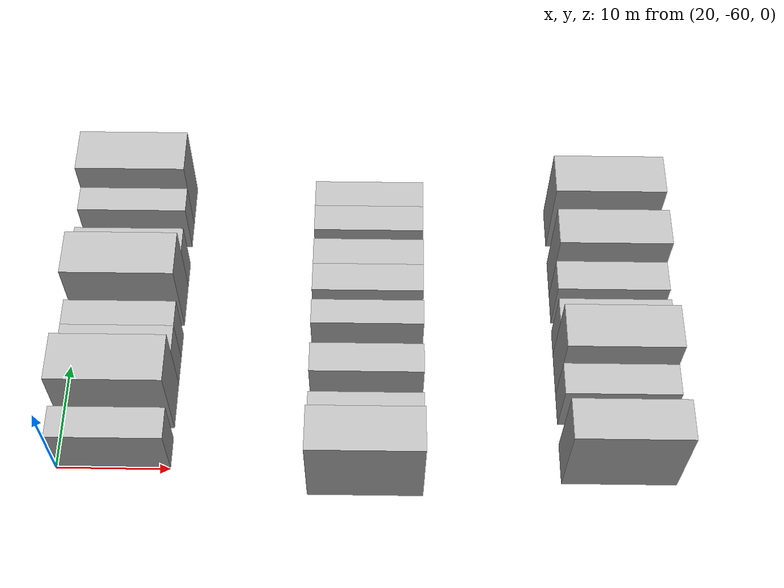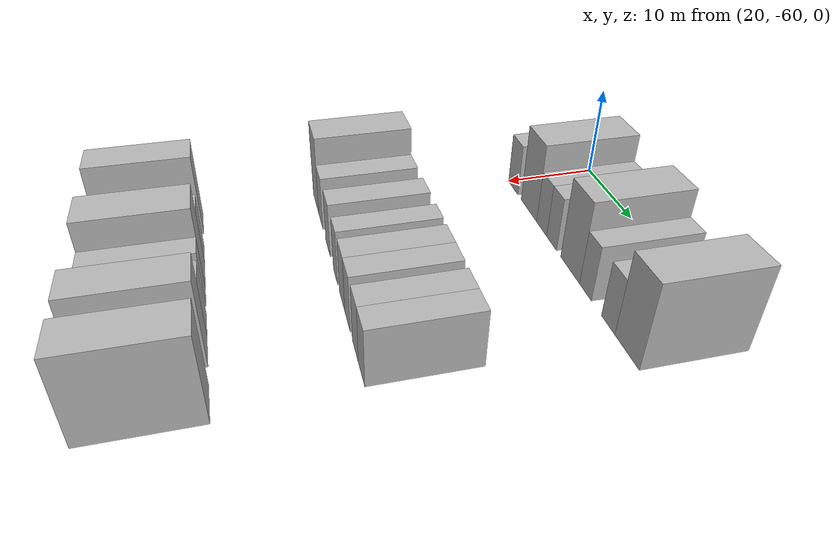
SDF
<sdf version="1.6">
 <world name="default">
  <model name="building_51">
   <static>1</static>
   <pose>25.0000 -58.4913 0 0.000000 0.000000 0.000000</pose>
   <link name="link">
    <pose>0 0 3.00 0 0 0</pose>
    <collision name="collision"><geometry><box><size>10.0000 2.8997 6.0000</size></box></geometry></collision>
    <visual name="visual">
     <cast_shadows>0</cast_shadows>
     <geometry><box><size>10.0000 2.8997 6.0000</size></box></geometry>
     <material>
      <script>
       <uri>model://HANNAS_wall/materials/scripts</uri>
       <uri>model://HANNAS_wall/materials/textures</uri>
       <name>vrc/HANNAS_wall</name>
      </script>
     </material>
    </visual>
   </link>
  </model>
  <model name="building_52">
   <static>1</static>
   <pose>25.0000 -53.8438 0 0.000000 0.000000 0.000000</pose>
   <link name="link">
    <pose>0 0 4.50 0 0 0</pose>
    <collision name="collision"><geometry><box><size>10.0000 4.3952 9.0000</size></box></geometry></collision>
    <visual name="visual">
     <cast_shadows>0</cast_shadows>
     <geometry><box><size>10.0000 4.3952 9.0000</size></box></geometry>
     <material>
      <script>
       <uri>model://HANNAS_wall/materials/scripts</uri>
       <uri>model://HANNAS_wall/materials/textures</uri>
       <name>vrc/HANNAS_wall</name>
      </script>
     </material>
    </visual>
   </link>
  </model>
  <model name="building_53">
   <static>1</static>
   <pose>25.0000 -50.3168 0 0.000000 0.000000 0.000000</pose>
   <link name="link">
    <pose>0 0 3.00 0 0 0</pose>
    <collision name="collision"><geometry><box><size>10.0000 2.6588 6.0000</size></box></geometry></collision>
    <visual name="visual">
     <cast_shadows>0</cast_shadows>
     <geometry><box><size>10.0000 2.6588 6.0000</size></box></geometry>
     <material>
      <script>
       <uri>model://HANNAS_wall/materials/scripts</uri>
       <uri>model://HANNAS_wall/materials/textures</uri>
       <name>vrc/HANNAS_wall</name>
      </script>
     </material>
    </visual>
   </link>
  </model>
  <model name="building_54">
   <static>1</static>
   <pose>25.0000 -47.7360 0 0.000000 0.000000 0.000000</pose>
   <link name="link">
    <pose>0 0 3.00 0 0 0</pose>
    <collision name="collision"><geometry><box><size>10.0000 2.5027 6.0000</size></box></geometry></collision>
    <visual name="visual">
     <cast_shadows>0</cast_shadows>
     <geometry><box><size>10.0000 2.5027 6.0000</size></box></geometry>
     <material>
      <script>
       <uri>model://HANNAS_wall/materials/scripts</uri>
       <uri>model://HANNAS_wall/materials/textures</uri>
       <name>vrc/HANNAS_wall</name>
      </script>
     </material>
    </visual>
   </link>
  </model>
  <model name="building_55">
   <static>1</static>
   <pose>25.0000 -43.3398 0 0.000000 0.000000 0.000000</pose>
   <link name="link">
    <pose>0 0 4.50 0 0 0</pose>
    <collision name="collision"><geometry><box><size>10.0000 4.2897 9.0000</size></box></geometry></collision>
    <visual name="visual">
     <cast_shadows>0</cast_shadows>
     <geometry><box><size>10.0000 4.2897 9.0000</size></box></geometry>
     <material>
      <script>
       <uri>model://HANNAS_wall/materials/scripts</uri>
       <uri>model://HANNAS_wall/materials/textures</uri>
       <name>vrc/HANNAS_wall</name>
      </script>
     </material>
    </visual>
   </link>
  </model>
  <model name="building_56">
   <static>1</static>
   <pose>25.0000 -39.9396 0 0.000000 0.000000 0.000000</pose>
   <link name="link">
    <pose>0 0 3.00 0 0 0</pose>
    <collision name="collision"><geometry><box><size>10.0000 2.5107 6.0000</size></box></geometry></collision>
    <visual name="visual">
     <cast_shadows>0</cast_shadows>
     <geometry><box><size>10.0000 2.5107 6.0000</size></box></geometry>
     <material>
      <script>
       <uri>model://HANNAS_wall/materials/scripts</uri>
       <uri>model://HANNAS_wall/materials/textures</uri>
       <name>vrc/HANNAS_wall</name>
      </script>
     </material>
    </visual>
   </link>
  </model>
  <model name="building_57">
   <static>1</static>
   <pose>25.0000 -35.4234 0 0.000000 0.000000 0.000000</pose>
   <link name="link">
    <pose>0 0 3.00 0 0 0</pose>
    <collision name="collision"><geometry><box><size>10.0000 2.5218 6.0000</size></box></geometry></collision>
    <visual name="visual">
     <cast_shadows>0</cast_shadows>
     <geometry><box><size>10.0000 2.5218 6.0000</size></box></geometry>
     <material>
      <script>
       <uri>model://HANNAS_wall/materials/scripts</uri>
       <uri>model://HANNAS_wall/materials/textures</uri>
       <name>vrc/HANNAS_wall</name>
      </script>
     </material>
    </visual>
   </link>
  </model>
  <model name="building_58">
   <static>1</static>
   <pose>25.0000 -32.0395 0 0.000000 0.000000 0.000000</pose>
   <link name="link">
    <pose>0 0 4.50 0 0 0</pose>
    <collision name="collision"><geometry><box><size>10.0000 4.2459 9.0000</size></box></geometry></collision>
    <visual name="visual">
     <cast_shadows>0</cast_shadows>
     <geometry><box><size>10.0000 4.2459 9.0000</size></box></geometry>
     <material>
      <script>
       <uri>model://HANNAS_wall/materials/scripts</uri>
       <uri>model://HANNAS_wall/materials/textures</uri>
       <name>vrc/HANNAS_wall</name>
      </script>
     </material>
    </visual>
   </link>
  </model>
  <model name="building_183">
   <static>1</static>
   <pose>47.0000 -60.1987 0 0.000000 0.000000 0.000000</pose>
   <link name="link">
    <pose>0 0 4.50 0 0 0</pose>
    <collision name="collision"><geometry><box><size>10.0000 4.0830 9.0000</size></box></geometry></collision>
    <visual name="visual">
     <cast_shadows>0</cast_shadows>
     <geometry><box><size>10.0000 4.0830 9.0000</size></box></geometry>
     <material>
      <script>
       <uri>model://HANNAS_wall/materials/scripts</uri>
       <uri>model://HANNAS_wall/materials/textures</uri>
       <name>vrc/HANNAS_wall</name>
      </script>
     </material>
    </visual>
   </link>
  </model>
  <model name="building_184">
   <static>1</static>
   <pose>47.0000 -56.7410 0 0.000000 0.000000 0.000000</pose>
   <link name="link">
    <pose>0 0 3.00 0 0 0</pose>
    <collision name="collision"><geometry><box><size>10.0000 2.8324 6.0000</size></box></geometry></collision>
    <visual name="visual">
     <cast_shadows>0</cast_shadows>
     <geometry><box><size>10.0000 2.8324 6.0000</size></box></geometry>
     <material>
      <script>
       <uri>model://HANNAS_wall/materials/scripts</uri>
       <uri>model://HANNAS_wall/materials/textures</uri>
       <name>vrc/HANNAS_wall</name>
      </script>
     </material>
    </visual>
   </link>
  </model>
  <model name="building_185">
   <static>1</static>
   <pose>47.0000 -51.9276 0 0.000000 0.000000 0.000000</pose>
   <link name="link">
    <pose>0 0 3.00 0 0 0</pose>
    <collision name="collision"><geometry><box><size>10.0000 2.7942 6.0000</size></box></geometry></collision>
    <visual name="visual">
     <cast_shadows>0</cast_shadows>
     <geometry><box><size>10.0000 2.7942 6.0000</size></box></geometry>
     <material>
      <script>
       <uri>model://HANNAS_wall/materials/scripts</uri>
       <uri>model://HANNAS_wall/materials/textures</uri>
       <name>vrc/HANNAS_wall</name>
      </script>
     </material>
    </visual>
   </link>
  </model>
  <model name="building_186">
   <static>1</static>
   <pose>47.0000 -47.3177 0 0.000000 0.000000 0.000000</pose>
   <link name="link">
    <pose>0 0 3.00 0 0 0</pose>
    <collision name="collision"><geometry><box><size>10.0000 2.4257 6.0000</size></box></geometry></collision>
    <visual name="visual">
     <cast_shadows>0</cast_shadows>
     <geometry><box><size>10.0000 2.4257 6.0000</size></box></geometry>
     <material>
      <script>
       <uri>model://HANNAS_wall/materials/scripts</uri>
       <uri>model://HANNAS_wall/materials/textures</uri>
       <name>vrc/HANNAS_wall</name>
      </script>
     </material>
    </visual>
   </link>
  </model>
  <model name="building_187">
   <static>1</static>
   <pose>47.0000 -43.7033 0 0.000000 0.000000 0.000000</pose>
   <link name="link">
    <pose>0 0 3.00 0 0 0</pose>
    <collision name="collision"><geometry><box><size>10.0000 2.8031 6.0000</size></box></geometry></collision>
    <visual name="visual">
     <cast_shadows>0</cast_shadows>
     <geometry><box><size>10.0000 2.8031 6.0000</size></box></geometry>
     <material>
      <script>
       <uri>model://HANNAS_wall/materials/scripts</uri>
       <uri>model://HANNAS_wall/materials/textures</uri>
       <name>vrc/HANNAS_wall</name>
      </script>
     </material>
    </visual>
   </link>
  </model>
  <model name="building_188">
   <static>1</static>
   <pose>47.0000 -40.9563 0 0.000000 0.000000 0.000000</pose>
   <link name="link">
    <pose>0 0 3.00 0 0 0</pose>
    <collision name="collision"><geometry><box><size>10.0000 2.6908 6.0000</size></box></geometry></collision>
    <visual name="visual">
     <cast_shadows>0</cast_shadows>
     <geometry><box><size>10.0000 2.6908 6.0000</size></box></geometry>
     <material>
      <script>
       <uri>model://HANNAS_wall/materials/scripts</uri>
       <uri>model://HANNAS_wall/materials/textures</uri>
       <name>vrc/HANNAS_wall</name>
      </script>
     </material>
    </visual>
   </link>
  </model>
  <model name="building_189">
   <static>1</static>
   <pose>47.0000 -37.2589 0 0.000000 0.000000 0.000000</pose>
   <link name="link">
    <pose>0 0 3.00 0 0 0</pose>
    <collision name="collision"><geometry><box><size>10.0000 2.7040 6.0000</size></box></geometry></collision>
    <visual name="visual">
     <cast_shadows>0</cast_shadows>
     <geometry><box><size>10.0000 2.7040 6.0000</size></box></geometry>
     <material>
      <script>
       <uri>model://HANNAS_wall/materials/scripts</uri>
       <uri>model://HANNAS_wall/materials/textures</uri>
       <name>vrc/HANNAS_wall</name>
      </script>
     </material>
    </visual>
   </link>
  </model>
  <model name="building_190">
   <static>1</static>
   <pose>47.0000 -34.5333 0 0.000000 0.000000 0.000000</pose>
   <link name="link">
    <pose>0 0 3.00 0 0 0</pose>
    <collision name="collision"><geometry><box><size>10.0000 2.7471 6.0000</size></box></geometry></collision>
    <visual name="visual">
     <cast_shadows>0</cast_shadows>
     <geometry><box><size>10.0000 2.7471 6.0000</size></box></geometry>
     <material>
      <script>
       <uri>model://HANNAS_wall/materials/scripts</uri>
       <uri>model://HANNAS_wall/materials/textures</uri>
       <name>vrc/HANNAS_wall</name>
      </script>
     </material>
    </visual>
   </link>
  </model>
  <model name="building_302">
   <static>1</static>
   <pose>69.0000 -59.0892 0 0.000000 0.000000 0.000000</pose>
   <link name="link">
    <pose>0 0 4.50 0 0 0</pose>
    <collision name="collision"><geometry><box><size>10.0000 3.7042 9.0000</size></box></geometry></collision>
    <visual name="visual">
     <cast_shadows>0</cast_shadows>
     <geometry><box><size>10.0000 3.7042 9.0000</size></box></geometry>
     <material>
      <script>
       <uri>model://HANNAS_wall/materials/scripts</uri>
       <uri>model://HANNAS_wall/materials/textures</uri>
       <name>vrc/HANNAS_wall</name>
      </script>
     </material>
    </visual>
   </link>
  </model>
  <model name="building_303">
   <static>1</static>
   <pose>69.0000 -53.7679 0 0.000000 0.000000 0.000000</pose>
   <link name="link">
    <pose>0 0 3.00 0 0 0</pose>
    <collision name="collision"><geometry><box><size>10.0000 2.9385 6.0000</size></box></geometry></collision>
    <visual name="visual">
     <cast_shadows>0</cast_shadows>
     <geometry><box><size>10.0000 2.9385 6.0000</size></box></geometry>
     <material>
      <script>
       <uri>model://HANNAS_wall/materials/scripts</uri>
       <uri>model://HANNAS_wall/materials/textures</uri>
       <name>vrc/HANNAS_wall</name>
      </script>
     </material>
    </visual>
   </link>
  </model>
  <model name="building_304">
   <static>1</static>
   <pose>69.0000 -50.2243 0 0.000000 0.000000 0.000000</pose>
   <link name="link">
    <pose>0 0 4.50 0 0 0</pose>
    <collision name="collision"><geometry><box><size>10.0000 4.1486 9.0000</size></box></geometry></collision>
    <visual name="visual">
     <cast_shadows>0</cast_shadows>
     <geometry><box><size>10.0000 4.1486 9.0000</size></box></geometry>
     <material>
      <script>
       <uri>model://HANNAS_wall/materials/scripts</uri>
       <uri>model://HANNAS_wall/materials/textures</uri>
       <name>vrc/HANNAS_wall</name>
      </script>
     </material>
    </visual>
   </link>
  </model>
  <model name="building_305">
   <static>1</static>
   <pose>69.0000 -46.9462 0 0.000000 0.000000 0.000000</pose>
   <link name="link">
    <pose>0 0 3.00 0 0 0</pose>
    <collision name="collision"><geometry><box><size>10.0000 2.4076 6.0000</size></box></geometry></collision>
    <visual name="visual">
     <cast_shadows>0</cast_shadows>
     <geometry><box><size>10.0000 2.4076 6.0000</size></box></geometry>
     <material>
      <script>
       <uri>model://HANNAS_wall/materials/scripts</uri>
       <uri>model://HANNAS_wall/materials/textures</uri>
       <name>vrc/HANNAS_wall</name>
      </script>
     </material>
    </visual>
   </link>
  </model>
  <model name="building_306">
   <static>1</static>
   <pose>69.0000 -43.2603 0 0.000000 0.000000 0.000000</pose>
   <link name="link">
    <pose>0 0 3.00 0 0 0</pose>
    <collision name="collision"><geometry><box><size>10.0000 2.9642 6.0000</size></box></geometry></collision>
    <visual name="visual">
     <cast_shadows>0</cast_shadows>
     <geometry><box><size>10.0000 2.9642 6.0000</size></box></geometry>
     <material>
      <script>
       <uri>model://HANNAS_wall/materials/scripts</uri>
       <uri>model://HANNAS_wall/materials/textures</uri>
       <name>vrc/HANNAS_wall</name>
      </script>
     </material>
    </visual>
   </link>
  </model>
  <model name="building_307">
   <static>1</static>
   <pose>69.0000 -39.9596 0 0.000000 0.000000 0.000000</pose>
   <link name="link">
    <pose>0 0 4.50 0 0 0</pose>
    <collision name="collision"><geometry><box><size>10.0000 3.6372 9.0000</size></box></geometry></collision>
    <visual name="visual">
     <cast_shadows>0</cast_shadows>
     <geometry><box><size>10.0000 3.6372 9.0000</size></box></geometry>
     <material>
      <script>
       <uri>model://HANNAS_wall/materials/scripts</uri>
       <uri>model://HANNAS_wall/materials/textures</uri>
       <name>vrc/HANNAS_wall</name>
      </script>
     </material>
    </visual>
   </link>
  </model>
  <model name="building_308">
   <static>1</static>
   <pose>69.0000 -34.1440 0 0.000000 0.000000 0.000000</pose>
   <link name="link">
    <pose>0 0 4.50 0 0 0</pose>
    <collision name="collision"><geometry><box><size>10.0000 3.9940 9.0000</size></box></geometry></collision>
    <visual name="visual">
     <cast_shadows>0</cast_shadows>
     <geometry><box><size>10.0000 3.9940 9.0000</size></box></geometry>
     <material>
      <script>
       <uri>model://HANNAS_wall/materials/scripts</uri>
       <uri>model://HANNAS_wall/materials/textures</uri>
       <name>vrc/HANNAS_wall</name>
      </script>
     </material>
    </visual>
   </link>
  </model>
 </world>
</sdf>
